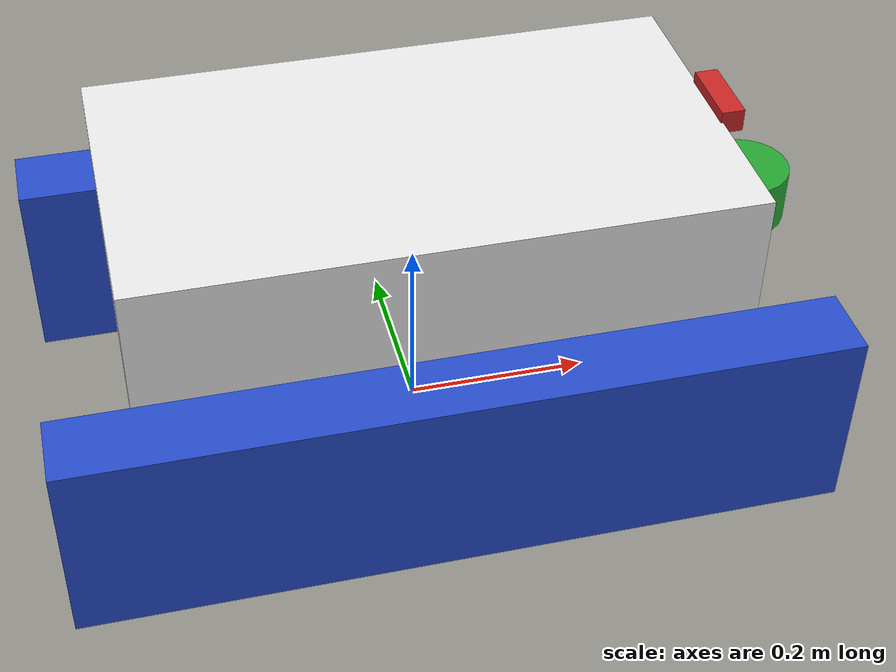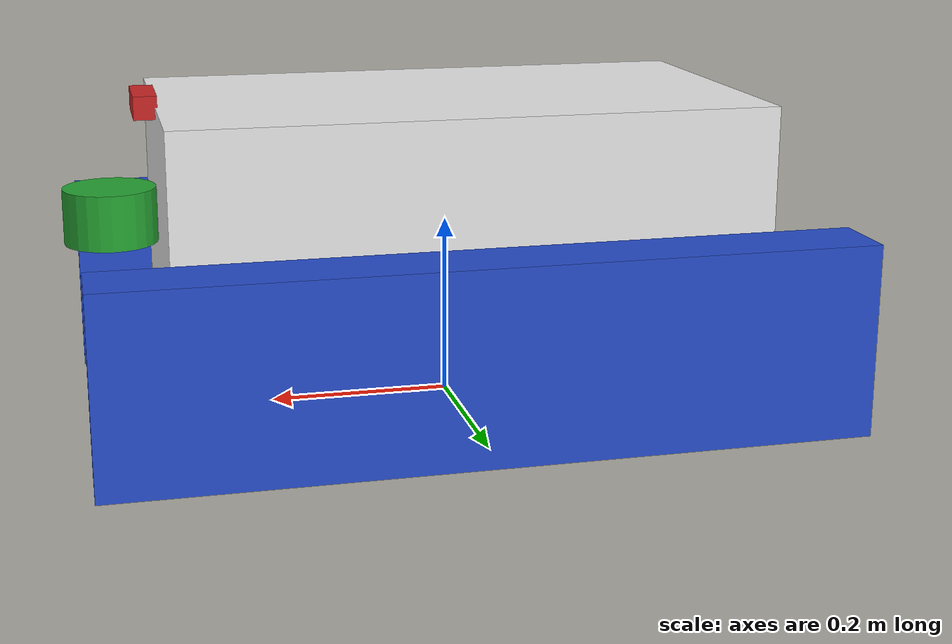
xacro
<?xml version = "1.0" ?>
<robot xmlns:xacro = "http://www.ros.org/wiki/xacro">

    <xacro:property name = "base_length" value = "0.64" />
    <xacro:property name = "base_width" value = "0.36" />
    <xacro:property name = "base_height" value = "0.24" />

    <xacro:property name = "w_frame_length" value = "0.81" />
    <xacro:property name = "w_frame_width" value = "0.08" />
    <xacro:property name = "w_frame_height" value = "0.21" />

    <xacro:property name = "lidar_radius" value = "0.05" />
    <xacro:property name = "lidar_length" value = "0.06" />

    <link name = "footprint">
    </link>

    <link name = "base_link">
        <visual>
            <geometry>
                <box size = "${base_length} ${base_width} ${base_height}" />
            </geometry>
            <origin xyz = "0 0 0" rpy = "0 0 0" />
            <material name = "white" />
        </visual>
        <!--add collision property-->
        <collision>
            <geometry>
                <box size = "${base_length} ${base_width} ${base_height}" />
            </geometry>
            <origin xyz = "0 0 0" rpy = "0 0 0" />
        </collision>
        <!--add inertial property-->
        <xacro:box_inertial m = "15.0" l = "${base_length}" w = "${base_width}" h = "${base_height}"
                            xyz = "0 0 0" rpy = "0 0 0" />
    </link>

    <joint name = "base_joint" type = "fixed">
        <parent link = "footprint" />
        <child link = "base_link" />
        <origin xyz = "0 0 ${(base_height + w_frame_height) / 2}" rpy = "0 0 0" />
    </joint>

    <link name = "lidar_link">
        <visual>
            <geometry>
                <cylinder radius="${lidar_radius}" length="${lidar_length}" />
            </geometry>
            <origin xyz = "0.0 0.0 0.0" rpy = "0.0 0.0 0.0" />
            <material name = "green" />
        </visual>
        <collision>
            <geometry>
                <cylinder radius="${lidar_radius}" length="${lidar_length}"/>
            </geometry>
            <origin xyz="0.0 0.0 0.0" rpy="0.0 0.0 0.0"/>
        </collision>
        <xacro:cylinder_inertial m = "0.5" r = "${lidar_radius}" h = "${lidar_length}"
                                 xyz = "0.0 0.0 0.0" rpy = "0.0 0.0 0.0" />
    </link>

    <joint name="lidar_joint" type="fixed">
        <parent link="base_link"/>
        <child link="lidar_link"/>
        <origin xyz = "${(base_length) / 2.0 + lidar_radius} 0 0" rpy = "0 0 ${pi}" />
        <axis xyz="0.0 0.0 0.0"/>
    </joint>

    <link name = "right_frame">
        <visual>
            <geometry>
                <box size = "${w_frame_length} ${w_frame_width} ${w_frame_height}" />
            </geometry>
            <origin xyz = "0 0 0" rpy = "0 0 0" />
            <material name = "blue" />
        </visual>
        <collision>
            <geometry>
                <box size = "${w_frame_length} ${w_frame_width} ${w_frame_height}" />
            </geometry>
            <origin xyz = "0 0 0" rpy = "0 0 0" />
        </collision>
        <xacro:box_inertial m = "5.0" l = "${w_frame_length}" w = "${w_frame_width}" h = "${w_frame_height}"
                            xyz = "0 0 0" rpy = "0 0 0" />
    </link>

    <link name = "left_frame">
        <visual>
            <geometry>
                <box size = "${w_frame_length} ${w_frame_width} ${w_frame_height}" />
            </geometry>
            <origin xyz = "0 0 0" rpy = "0 0 0" />
            <material name = "blue" />
        </visual>
        <collision>
            <geometry>
                <box size = "${w_frame_length} ${w_frame_width} ${w_frame_height}" />
            </geometry>
            <origin xyz = "0 0 0" rpy = "0 0 0" />
        </collision>
        <xacro:box_inertial m = "5.0" l = "${w_frame_length}" w = "${w_frame_width}" h = "${w_frame_height}"
                            xyz = "0 0 0" rpy = "0 0 0" />
    </link>

    <link name = "imu_link">
        <visual>
            <geometry>
                <box size="0.045 0.04 0.01"/>
            </geometry>
            <origin xyz = "0 0 0" rpy = "0 0 0" />
            <material name = "white" />
        </visual>
        <collision>
            <geometry>
                <box size="0.045 0.04 0.01"/>
            </geometry>
            <origin xyz="0.0 0.0 0.0" rpy="0.0 0.0 0.0"/>
        </collision>
        <xacro:box_inertial m = "0.1" l = "0.045" w = "0.04" h = "0.01"
                            xyz = "0 0 0" rpy = "0 0 0" />
    </link>

    <!-- IMU joint-->
    <joint name = "base_imu_joint" type = "fixed">
        <parent link = "base_link" />
        <child link = "imu_link" />
        <origin xyz = "0 0 0" rpy = "0 0 0" />
        <axis xyz = "0 0 0" />
    </joint>

    <link name = "cam_link">
        <visual>
            <geometry>
                <box size="0.025 0.08 0.025"/>
            </geometry>
            <origin xyz = "0 0 0" rpy = "0 0 0" />
            <material name = "red" />
        </visual>
        <collision>
            <geometry>
                <box size="0.025 0.08 0.025"/>
            </geometry>
            <origin xyz="0.0 0.0 0.0" rpy="0.0 0.0 0.0"/>
        </collision>
        <xacro:box_inertial m = "0.1" l = "0.08" w = "0.025" h = "0.025"
                            xyz = "0 0 0" rpy = "0 0 0" />
    </link>

    <joint name = "base_cam_joint" type = "fixed">
        <parent link = "base_link" />
        <child link = "cam_link" />
        <origin xyz = "${(base_length) / 2.0 + 0.01} 0 ${(base_height) / 2.0}" rpy = "0 0 0" />
        <axis xyz = "0 0 0" />
    </joint>

    <!--wheel joint-->
    <joint name = "base_left_frame_joint" type = "fixed">
        <parent link = "base_link" />
        <child link = "left_frame" />
        <origin xyz = "0 ${(base_width + w_frame_width) / 2.0} ${-base_height / 2.0}" rpy = "0 0 0" />
        <axis xyz = "0 0 0" />
    </joint>

    <joint name = "base_right_frame_joint" type = "fixed">
        <parent link = "base_link" />
        <child link = "right_frame" />
        <origin xyz = "0 ${-(base_width + w_frame_width) / 2.0} ${-base_height / 2.0}" rpy = "0 0 0" />
        <axis xyz = "0 0 0" />
    </joint>

    <!--model color set in gazebo-->

</robot>
